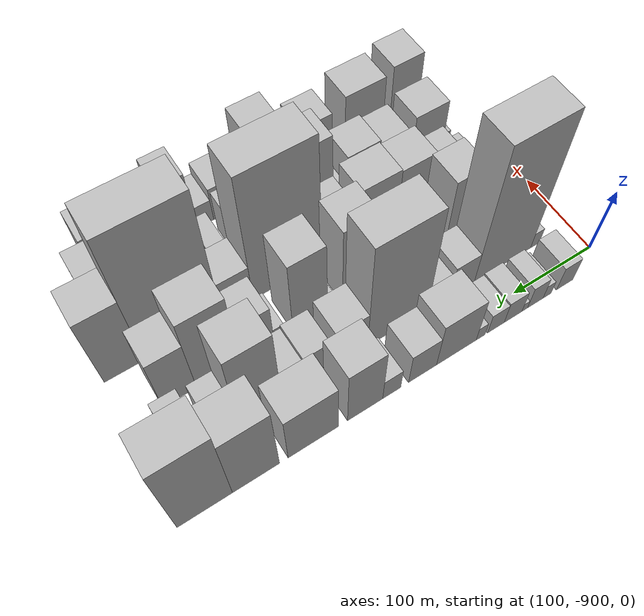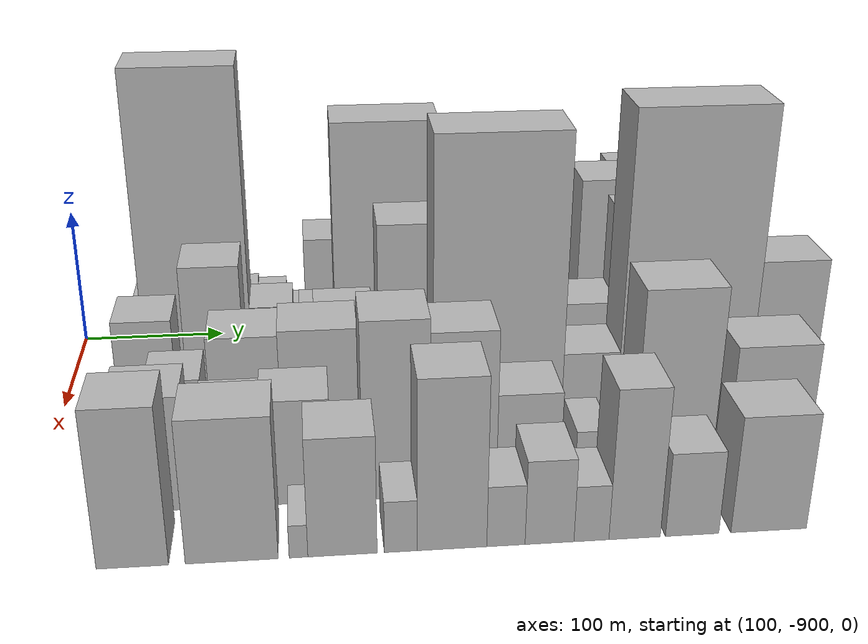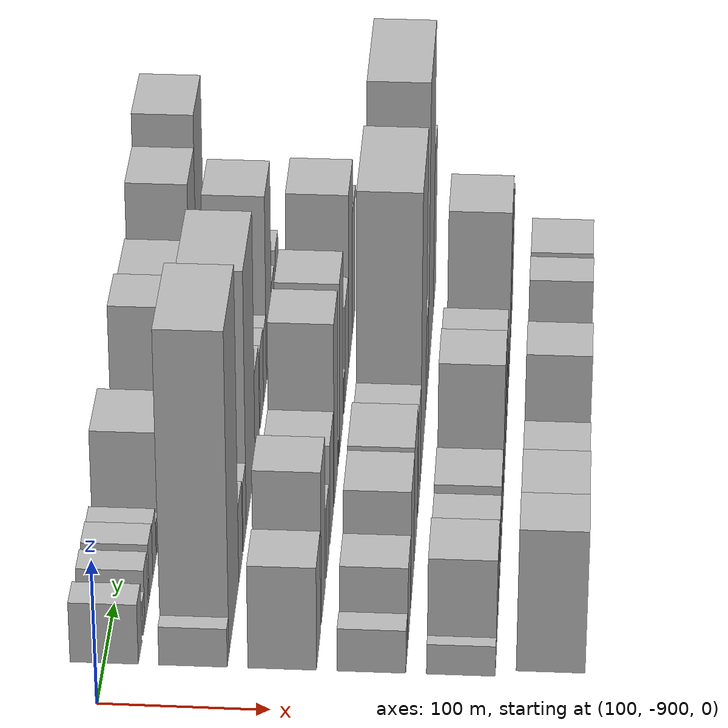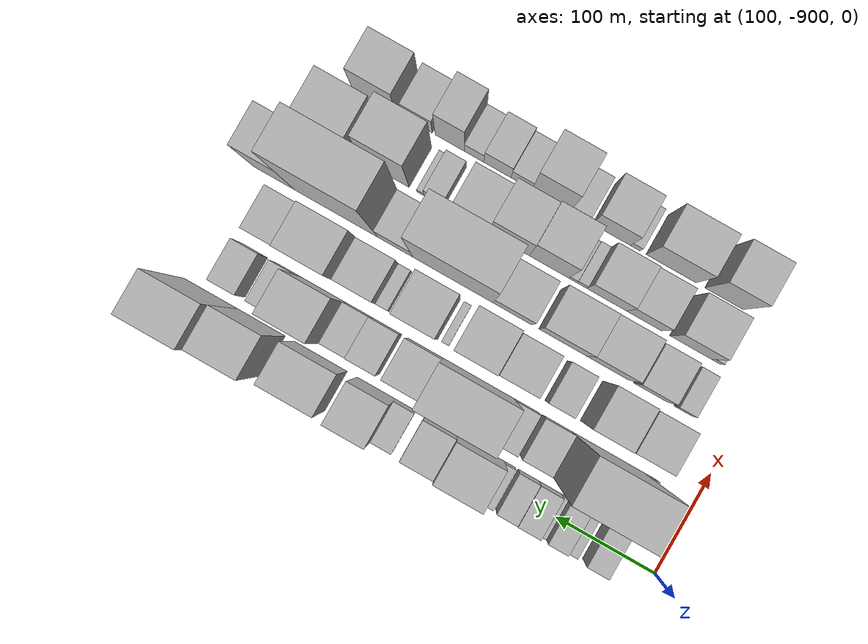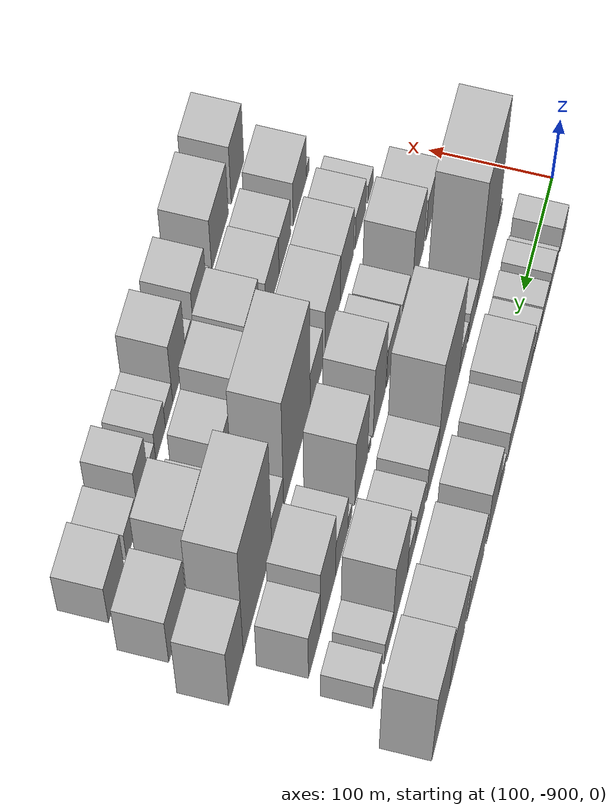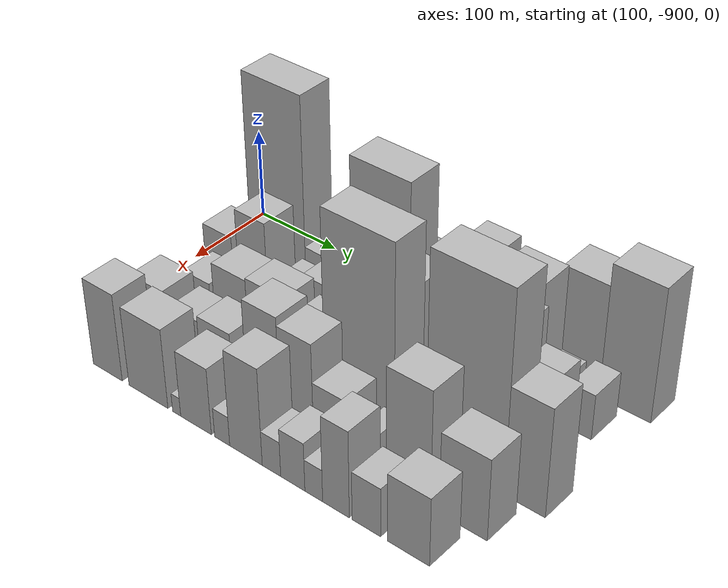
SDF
<sdf version="1.6">
 <world name="default">
  <model name="building_1">
   <static>1</static>
   <pose>100.0000 -849.2613 0 0.000000 0.000000 0.000000</pose>
   <link name="link">
    <pose>0 0 21.00 0 0 0</pose>
    <collision name="collision"><geometry><box><size>40.0000 21.4774 42.0000</size></box></geometry></collision>
    <visual name="visual">
     <cast_shadows>0</cast_shadows>
     <geometry><box><size>40.0000 21.4774 42.0000</size></box></geometry>
     <material>
      <script>
       <uri>model://HANNAS_wall/materials/scripts</uri>
       <uri>model://HANNAS_wall/materials/textures</uri>
       <name>vrc/HANNAS_wall</name>
      </script>
     </material>
    </visual>
   </link>
  </model>
  <model name="building_2">
   <static>1</static>
   <pose>100.0000 -826.2821 0 0.000000 0.000000 0.000000</pose>
   <link name="link">
    <pose>0 0 12.00 0 0 0</pose>
    <collision name="collision"><geometry><box><size>40.0000 10.4811 24.0000</size></box></geometry></collision>
    <visual name="visual">
     <cast_shadows>0</cast_shadows>
     <geometry><box><size>40.0000 10.4811 24.0000</size></box></geometry>
     <material>
      <script>
       <uri>model://HANNAS_wall/materials/scripts</uri>
       <uri>model://HANNAS_wall/materials/textures</uri>
       <name>vrc/HANNAS_wall</name>
      </script>
     </material>
    </visual>
   </link>
  </model>
  <model name="building_3">
   <static>1</static>
   <pose>100.0000 -811.0460 0 0.000000 0.000000 0.000000</pose>
   <link name="link">
    <pose>0 0 19.50 0 0 0</pose>
    <collision name="collision"><geometry><box><size>40.0000 19.9910 39.0000</size></box></geometry></collision>
    <visual name="visual">
     <cast_shadows>0</cast_shadows>
     <geometry><box><size>40.0000 19.9910 39.0000</size></box></geometry>
     <material>
      <script>
       <uri>model://HANNAS_wall/materials/scripts</uri>
       <uri>model://HANNAS_wall/materials/textures</uri>
       <name>vrc/HANNAS_wall</name>
      </script>
     </material>
    </visual>
   </link>
  </model>
  <model name="building_4">
   <static>1</static>
   <pose>100.0000 -797.5958 0 0.000000 0.000000 0.000000</pose>
   <link name="link">
    <pose>0 0 7.50 0 0 0</pose>
    <collision name="collision"><geometry><box><size>40.0000 6.9093 15.0000</size></box></geometry></collision>
    <visual name="visual">
     <cast_shadows>0</cast_shadows>
     <geometry><box><size>40.0000 6.9093 15.0000</size></box></geometry>
     <material>
      <script>
       <uri>model://HANNAS_wall/materials/scripts</uri>
       <uri>model://HANNAS_wall/materials/textures</uri>
       <name>vrc/HANNAS_wall</name>
      </script>
     </material>
    </visual>
   </link>
  </model>
  <model name="building_5">
   <static>1</static>
   <pose>100.0000 -782.9081 0 0.000000 0.000000 0.000000</pose>
   <link name="link">
    <pose>0 0 19.50 0 0 0</pose>
    <collision name="collision"><geometry><box><size>40.0000 22.4662 39.0000</size></box></geometry></collision>
    <visual name="visual">
     <cast_shadows>0</cast_shadows>
     <geometry><box><size>40.0000 22.4662 39.0000</size></box></geometry>
     <material>
      <script>
       <uri>model://HANNAS_wall/materials/scripts</uri>
       <uri>model://HANNAS_wall/materials/textures</uri>
       <name>vrc/HANNAS_wall</name>
      </script>
     </material>
    </visual>
   </link>
  </model>
  <model name="building_6">
   <static>1</static>
   <pose>100.0000 -761.3507 0 0.000000 0.000000 0.000000</pose>
   <link name="link">
    <pose>0 0 18.00 0 0 0</pose>
    <collision name="collision"><geometry><box><size>40.0000 20.6486 36.0000</size></box></geometry></collision>
    <visual name="visual">
     <cast_shadows>0</cast_shadows>
     <geometry><box><size>40.0000 20.6486 36.0000</size></box></geometry>
     <material>
      <script>
       <uri>model://HANNAS_wall/materials/scripts</uri>
       <uri>model://HANNAS_wall/materials/textures</uri>
       <name>vrc/HANNAS_wall</name>
      </script>
     </material>
    </visual>
   </link>
  </model>
  <model name="building_7">
   <static>1</static>
   <pose>100.0000 -742.5813 0 0.000000 0.000000 0.000000</pose>
   <link name="link">
    <pose>0 0 12.00 0 0 0</pose>
    <collision name="collision"><geometry><box><size>40.0000 10.8901 24.0000</size></box></geometry></collision>
    <visual name="visual">
     <cast_shadows>0</cast_shadows>
     <geometry><box><size>40.0000 10.8901 24.0000</size></box></geometry>
     <material>
      <script>
       <uri>model://HANNAS_wall/materials/scripts</uri>
       <uri>model://HANNAS_wall/materials/textures</uri>
       <name>vrc/HANNAS_wall</name>
      </script>
     </material>
    </visual>
   </link>
  </model>
  <model name="building_8">
   <static>1</static>
   <pose>100.0000 -713.3222 0 0.000000 0.000000 0.000000</pose>
   <link name="link">
    <pose>0 0 40.50 0 0 0</pose>
    <collision name="collision"><geometry><box><size>40.0000 47.6282 81.0000</size></box></geometry></collision>
    <visual name="visual">
     <cast_shadows>0</cast_shadows>
     <geometry><box><size>40.0000 47.6282 81.0000</size></box></geometry>
     <material>
      <script>
       <uri>model://HANNAS_wall/materials/scripts</uri>
       <uri>model://HANNAS_wall/materials/textures</uri>
       <name>vrc/HANNAS_wall</name>
      </script>
     </material>
    </visual>
   </link>
  </model>
  <model name="building_9">
   <static>1</static>
   <pose>100.0000 -673.1779 0 0.000000 0.000000 0.000000</pose>
   <link name="link">
    <pose>0 0 28.50 0 0 0</pose>
    <collision name="collision"><geometry><box><size>40.0000 32.6604 57.0000</size></box></geometry></collision>
    <visual name="visual">
     <cast_shadows>0</cast_shadows>
     <geometry><box><size>40.0000 32.6604 57.0000</size></box></geometry>
     <material>
      <script>
       <uri>model://HANNAS_wall/materials/scripts</uri>
       <uri>model://HANNAS_wall/materials/textures</uri>
       <name>vrc/HANNAS_wall</name>
      </script>
     </material>
    </visual>
   </link>
  </model>
  <model name="building_10">
   <static>1</static>
   <pose>100.0000 -637.5639 0 0.000000 0.000000 0.000000</pose>
   <link name="link">
    <pose>0 0 19.50 0 0 0</pose>
    <collision name="collision"><geometry><box><size>40.0000 20.5675 39.0000</size></box></geometry></collision>
    <visual name="visual">
     <cast_shadows>0</cast_shadows>
     <geometry><box><size>40.0000 20.5675 39.0000</size></box></geometry>
     <material>
      <script>
       <uri>model://HANNAS_wall/materials/scripts</uri>
       <uri>model://HANNAS_wall/materials/textures</uri>
       <name>vrc/HANNAS_wall</name>
      </script>
     </material>
    </visual>
   </link>
  </model>
  <model name="building_11">
   <static>1</static>
   <pose>100.0000 -607.6773 0 0.000000 0.000000 0.000000</pose>
   <link name="link">
    <pose>0 0 51.00 0 0 0</pose>
    <collision name="collision"><geometry><box><size>40.0000 39.2058 102.0000</size></box></geometry></collision>
    <visual name="visual">
     <cast_shadows>0</cast_shadows>
     <geometry><box><size>40.0000 39.2058 102.0000</size></box></geometry>
     <material>
      <script>
       <uri>model://HANNAS_wall/materials/scripts</uri>
       <uri>model://HANNAS_wall/materials/textures</uri>
       <name>vrc/HANNAS_wall</name>
      </script>
     </material>
    </visual>
   </link>
  </model>
  <model name="building_12">
   <static>1</static>
   <pose>100.0000 -551.1568 0 0.000000 0.000000 0.000000</pose>
   <link name="link">
    <pose>0 0 45.00 0 0 0</pose>
    <collision name="collision"><geometry><box><size>40.0000 53.8351 90.0000</size></box></geometry></collision>
    <visual name="visual">
     <cast_shadows>0</cast_shadows>
     <geometry><box><size>40.0000 53.8351 90.0000</size></box></geometry>
     <material>
      <script>
       <uri>model://HANNAS_wall/materials/scripts</uri>
       <uri>model://HANNAS_wall/materials/textures</uri>
       <name>vrc/HANNAS_wall</name>
      </script>
     </material>
    </visual>
   </link>
  </model>
  <model name="building_13">
   <static>1</static>
   <pose>100.0000 -491.0969 0 0.000000 0.000000 0.000000</pose>
   <link name="link">
    <pose>0 0 63.00 0 0 0</pose>
    <collision name="collision"><geometry><box><size>40.0000 48.2848 126.0000</size></box></geometry></collision>
    <visual name="visual">
     <cast_shadows>0</cast_shadows>
     <geometry><box><size>40.0000 48.2848 126.0000</size></box></geometry>
     <material>
      <script>
       <uri>model://HANNAS_wall/materials/scripts</uri>
       <uri>model://HANNAS_wall/materials/textures</uri>
       <name>vrc/HANNAS_wall</name>
      </script>
     </material>
    </visual>
   </link>
  </model>
  <model name="building_14">
   <static>1</static>
   <pose>100.0000 -439.5208 0 0.000000 0.000000 0.000000</pose>
   <link name="link">
    <pose>0 0 75.00 0 0 0</pose>
    <collision name="collision"><geometry><box><size>40.0000 54.8674 150.0000</size></box></geometry></collision>
    <visual name="visual">
     <cast_shadows>0</cast_shadows>
     <geometry><box><size>40.0000 54.8674 150.0000</size></box></geometry>
     <material>
      <script>
       <uri>model://HANNAS_wall/materials/scripts</uri>
       <uri>model://HANNAS_wall/materials/textures</uri>
       <name>vrc/HANNAS_wall</name>
      </script>
     </material>
    </visual>
   </link>
  </model>
  <model name="building_45">
   <static>1</static>
   <pose>152.0000 -854.0687 0 0.000000 0.000000 0.000000</pose>
   <link name="link">
    <pose>0 0 13.50 0 0 0</pose>
    <collision name="collision"><geometry><box><size>40.0000 11.8627 27.0000</size></box></geometry></collision>
    <visual name="visual">
     <cast_shadows>0</cast_shadows>
     <geometry><box><size>40.0000 11.8627 27.0000</size></box></geometry>
     <material>
      <script>
       <uri>model://HANNAS_wall/materials/scripts</uri>
       <uri>model://HANNAS_wall/materials/textures</uri>
       <name>vrc/HANNAS_wall</name>
      </script>
     </material>
    </visual>
   </link>
  </model>
  <model name="building_46">
   <static>1</static>
   <pose>152.0000 -811.6512 0 0.000000 0.000000 0.000000</pose>
   <link name="link">
    <pose>0 0 111.00 0 0 0</pose>
    <collision name="collision"><geometry><box><size>40.0000 72.9722 222.0000</size></box></geometry></collision>
    <visual name="visual">
     <cast_shadows>0</cast_shadows>
     <geometry><box><size>40.0000 72.9722 222.0000</size></box></geometry>
     <material>
      <script>
       <uri>model://HANNAS_wall/materials/scripts</uri>
       <uri>model://HANNAS_wall/materials/textures</uri>
       <name>vrc/HANNAS_wall</name>
      </script>
     </material>
    </visual>
   </link>
  </model>
  <model name="building_47">
   <static>1</static>
   <pose>152.0000 -760.4063 0 0.000000 0.000000 0.000000</pose>
   <link name="link">
    <pose>0 0 27.00 0 0 0</pose>
    <collision name="collision"><geometry><box><size>40.0000 29.5176 54.0000</size></box></geometry></collision>
    <visual name="visual">
     <cast_shadows>0</cast_shadows>
     <geometry><box><size>40.0000 29.5176 54.0000</size></box></geometry>
     <material>
      <script>
       <uri>model://HANNAS_wall/materials/scripts</uri>
       <uri>model://HANNAS_wall/materials/textures</uri>
       <name>vrc/HANNAS_wall</name>
      </script>
     </material>
    </visual>
   </link>
  </model>
  <model name="building_48">
   <static>1</static>
   <pose>152.0000 -729.2760 0 0.000000 0.000000 0.000000</pose>
   <link name="link">
    <pose>0 0 24.00 0 0 0</pose>
    <collision name="collision"><geometry><box><size>40.0000 24.7430 48.0000</size></box></geometry></collision>
    <visual name="visual">
     <cast_shadows>0</cast_shadows>
     <geometry><box><size>40.0000 24.7430 48.0000</size></box></geometry>
     <material>
      <script>
       <uri>model://HANNAS_wall/materials/scripts</uri>
       <uri>model://HANNAS_wall/materials/textures</uri>
       <name>vrc/HANNAS_wall</name>
      </script>
     </material>
    </visual>
   </link>
  </model>
  <model name="building_49">
   <static>1</static>
   <pose>152.0000 -681.2867 0 0.000000 0.000000 0.000000</pose>
   <link name="link">
    <pose>0 0 91.50 0 0 0</pose>
    <collision name="collision"><geometry><box><size>40.0000 71.2357 183.0000</size></box></geometry></collision>
    <visual name="visual">
     <cast_shadows>0</cast_shadows>
     <geometry><box><size>40.0000 71.2357 183.0000</size></box></geometry>
     <material>
      <script>
       <uri>model://HANNAS_wall/materials/scripts</uri>
       <uri>model://HANNAS_wall/materials/textures</uri>
       <name>vrc/HANNAS_wall</name>
      </script>
     </material>
    </visual>
   </link>
  </model>
  <model name="building_50">
   <static>1</static>
   <pose>152.0000 -627.7862 0 0.000000 0.000000 0.000000</pose>
   <link name="link">
    <pose>0 0 33.00 0 0 0</pose>
    <collision name="collision"><geometry><box><size>40.0000 35.7652 66.0000</size></box></geometry></collision>
    <visual name="visual">
     <cast_shadows>0</cast_shadows>
     <geometry><box><size>40.0000 35.7652 66.0000</size></box></geometry>
     <material>
      <script>
       <uri>model://HANNAS_wall/materials/scripts</uri>
       <uri>model://HANNAS_wall/materials/textures</uri>
       <name>vrc/HANNAS_wall</name>
      </script>
     </material>
    </visual>
   </link>
  </model>
  <model name="building_51">
   <static>1</static>
   <pose>152.0000 -589.1586 0 0.000000 0.000000 0.000000</pose>
   <link name="link">
    <pose>0 0 28.50 0 0 0</pose>
    <collision name="collision"><geometry><box><size>40.0000 29.4901 57.0000</size></box></geometry></collision>
    <visual name="visual">
     <cast_shadows>0</cast_shadows>
     <geometry><box><size>40.0000 29.4901 57.0000</size></box></geometry>
     <material>
      <script>
       <uri>model://HANNAS_wall/materials/scripts</uri>
       <uri>model://HANNAS_wall/materials/textures</uri>
       <name>vrc/HANNAS_wall</name>
      </script>
     </material>
    </visual>
   </link>
  </model>
  <model name="building_52">
   <static>1</static>
   <pose>152.0000 -561.6178 0 0.000000 0.000000 0.000000</pose>
   <link name="link">
    <pose>0 0 25.50 0 0 0</pose>
    <collision name="collision"><geometry><box><size>40.0000 25.5915 51.0000</size></box></geometry></collision>
    <visual name="visual">
     <cast_shadows>0</cast_shadows>
     <geometry><box><size>40.0000 25.5915 51.0000</size></box></geometry>
     <material>
      <script>
       <uri>model://HANNAS_wall/materials/scripts</uri>
       <uri>model://HANNAS_wall/materials/textures</uri>
       <name>vrc/HANNAS_wall</name>
      </script>
     </material>
    </visual>
   </link>
  </model>
  <model name="building_53">
   <static>1</static>
   <pose>152.0000 -525.6842 0 0.000000 0.000000 0.000000</pose>
   <link name="link">
    <pose>0 0 69.00 0 0 0</pose>
    <collision name="collision"><geometry><box><size>40.0000 46.2758 138.0000</size></box></geometry></collision>
    <visual name="visual">
     <cast_shadows>0</cast_shadows>
     <geometry><box><size>40.0000 46.2758 138.0000</size></box></geometry>
     <material>
      <script>
       <uri>model://HANNAS_wall/materials/scripts</uri>
       <uri>model://HANNAS_wall/materials/textures</uri>
       <name>vrc/HANNAS_wall</name>
      </script>
     </material>
    </visual>
   </link>
  </model>
  <model name="building_54">
   <static>1</static>
   <pose>152.0000 -489.3933 0 0.000000 0.000000 0.000000</pose>
   <link name="link">
    <pose>0 0 22.50 0 0 0</pose>
    <collision name="collision"><geometry><box><size>40.0000 26.3059 45.0000</size></box></geometry></collision>
    <visual name="visual">
     <cast_shadows>0</cast_shadows>
     <geometry><box><size>40.0000 26.3059 45.0000</size></box></geometry>
     <material>
      <script>
       <uri>model://HANNAS_wall/materials/scripts</uri>
       <uri>model://HANNAS_wall/materials/textures</uri>
       <name>vrc/HANNAS_wall</name>
      </script>
     </material>
    </visual>
   </link>
  </model>
  <model name="building_55">
   <static>1</static>
   <pose>152.0000 -453.8426 0 0.000000 0.000000 0.000000</pose>
   <link name="link">
    <pose>0 0 25.50 0 0 0</pose>
    <collision name="collision"><geometry><box><size>40.0000 26.7954 51.0000</size></box></geometry></collision>
    <visual name="visual">
     <cast_shadows>0</cast_shadows>
     <geometry><box><size>40.0000 26.7954 51.0000</size></box></geometry>
     <material>
      <script>
       <uri>model://HANNAS_wall/materials/scripts</uri>
       <uri>model://HANNAS_wall/materials/textures</uri>
       <name>vrc/HANNAS_wall</name>
      </script>
     </material>
    </visual>
   </link>
  </model>
  <model name="building_92">
   <static>1</static>
   <pose>204.0000 -841.1010 0 0.000000 0.000000 0.000000</pose>
   <link name="link">
    <pose>0 0 36.00 0 0 0</pose>
    <collision name="collision"><geometry><box><size>40.0000 37.7981 72.0000</size></box></geometry></collision>
    <visual name="visual">
     <cast_shadows>0</cast_shadows>
     <geometry><box><size>40.0000 37.7981 72.0000</size></box></geometry>
     <material>
      <script>
       <uri>model://HANNAS_wall/materials/scripts</uri>
       <uri>model://HANNAS_wall/materials/textures</uri>
       <name>vrc/HANNAS_wall</name>
      </script>
     </material>
    </visual>
   </link>
  </model>
  <model name="building_93">
   <static>1</static>
   <pose>204.0000 -796.2831 0 0.000000 0.000000 0.000000</pose>
   <link name="link">
    <pose>0 0 54.00 0 0 0</pose>
    <collision name="collision"><geometry><box><size>40.0000 37.8376 108.0000</size></box></geometry></collision>
    <visual name="visual">
     <cast_shadows>0</cast_shadows>
     <geometry><box><size>40.0000 37.8376 108.0000</size></box></geometry>
     <material>
      <script>
       <uri>model://HANNAS_wall/materials/scripts</uri>
       <uri>model://HANNAS_wall/materials/textures</uri>
       <name>vrc/HANNAS_wall</name>
      </script>
     </material>
    </visual>
   </link>
  </model>
  <model name="building_94">
   <static>1</static>
   <pose>204.0000 -754.4841 0 0.000000 0.000000 0.000000</pose>
   <link name="link">
    <pose>0 0 25.50 0 0 0</pose>
    <collision name="collision"><geometry><box><size>40.0000 25.7603 51.0000</size></box></geometry></collision>
    <visual name="visual">
     <cast_shadows>0</cast_shadows>
     <geometry><box><size>40.0000 25.7603 51.0000</size></box></geometry>
     <material>
      <script>
       <uri>model://HANNAS_wall/materials/scripts</uri>
       <uri>model://HANNAS_wall/materials/textures</uri>
       <name>vrc/HANNAS_wall</name>
      </script>
     </material>
    </visual>
   </link>
  </model>
  <model name="building_95">
   <static>1</static>
   <pose>204.0000 -712.4133 0 0.000000 0.000000 0.000000</pose>
   <link name="link">
    <pose>0 0 36.00 0 0 0</pose>
    <collision name="collision"><geometry><box><size>40.0000 38.3814 72.0000</size></box></geometry></collision>
    <visual name="visual">
     <cast_shadows>0</cast_shadows>
     <geometry><box><size>40.0000 38.3814 72.0000</size></box></geometry>
     <material>
      <script>
       <uri>model://HANNAS_wall/materials/scripts</uri>
       <uri>model://HANNAS_wall/materials/textures</uri>
       <name>vrc/HANNAS_wall</name>
      </script>
     </material>
    </visual>
   </link>
  </model>
  <model name="building_96">
   <static>1</static>
   <pose>204.0000 -670.3769 0 0.000000 0.000000 0.000000</pose>
   <link name="link">
    <pose>0 0 66.00 0 0 0</pose>
    <collision name="collision"><geometry><box><size>40.0000 39.6915 132.0000</size></box></geometry></collision>
    <visual name="visual">
     <cast_shadows>0</cast_shadows>
     <geometry><box><size>40.0000 39.6915 132.0000</size></box></geometry>
     <material>
      <script>
       <uri>model://HANNAS_wall/materials/scripts</uri>
       <uri>model://HANNAS_wall/materials/textures</uri>
       <name>vrc/HANNAS_wall</name>
      </script>
     </material>
    </visual>
   </link>
  </model>
  <model name="building_97">
   <static>1</static>
   <pose>204.0000 -640.8719 0 0.000000 0.000000 0.000000</pose>
   <link name="link">
    <pose>0 0 9.00 0 0 0</pose>
    <collision name="collision"><geometry><box><size>40.0000 7.3185 18.0000</size></box></geometry></collision>
    <visual name="visual">
     <cast_shadows>0</cast_shadows>
     <geometry><box><size>40.0000 7.3185 18.0000</size></box></geometry>
     <material>
      <script>
       <uri>model://HANNAS_wall/materials/scripts</uri>
       <uri>model://HANNAS_wall/materials/textures</uri>
       <name>vrc/HANNAS_wall</name>
      </script>
     </material>
    </visual>
   </link>
  </model>
  <model name="building_98">
   <static>1</static>
   <pose>204.0000 -613.1644 0 0.000000 0.000000 0.000000</pose>
   <link name="link">
    <pose>0 0 63.00 0 0 0</pose>
    <collision name="collision"><geometry><box><size>40.0000 40.0965 126.0000</size></box></geometry></collision>
    <visual name="visual">
     <cast_shadows>0</cast_shadows>
     <geometry><box><size>40.0000 40.0965 126.0000</size></box></geometry>
     <material>
      <script>
       <uri>model://HANNAS_wall/materials/scripts</uri>
       <uri>model://HANNAS_wall/materials/textures</uri>
       <name>vrc/HANNAS_wall</name>
      </script>
     </material>
    </visual>
   </link>
  </model>
  <model name="building_99">
   <static>1</static>
   <pose>204.0000 -578.0000 0 0.000000 0.000000 0.000000</pose>
   <link name="link">
    <pose>0 0 13.50 0 0 0</pose>
    <collision name="collision"><geometry><box><size>40.0000 12.2322 27.0000</size></box></geometry></collision>
    <visual name="visual">
     <cast_shadows>0</cast_shadows>
     <geometry><box><size>40.0000 12.2322 27.0000</size></box></geometry>
     <material>
      <script>
       <uri>model://HANNAS_wall/materials/scripts</uri>
       <uri>model://HANNAS_wall/materials/textures</uri>
       <name>vrc/HANNAS_wall</name>
      </script>
     </material>
    </visual>
   </link>
  </model>
  <model name="building_100">
   <static>1</static>
   <pose>204.0000 -552.8324 0 0.000000 0.000000 0.000000</pose>
   <link name="link">
    <pose>0 0 36.00 0 0 0</pose>
    <collision name="collision"><geometry><box><size>40.0000 38.1032 72.0000</size></box></geometry></collision>
    <visual name="visual">
     <cast_shadows>0</cast_shadows>
     <geometry><box><size>40.0000 38.1032 72.0000</size></box></geometry>
     <material>
      <script>
       <uri>model://HANNAS_wall/materials/scripts</uri>
       <uri>model://HANNAS_wall/materials/textures</uri>
       <name>vrc/HANNAS_wall</name>
      </script>
     </material>
    </visual>
   </link>
  </model>
  <model name="building_101">
   <static>1</static>
   <pose>204.0000 -510.4311 0 0.000000 0.000000 0.000000</pose>
   <link name="link">
    <pose>0 0 66.00 0 0 0</pose>
    <collision name="collision"><geometry><box><size>40.0000 46.6993 132.0000</size></box></geometry></collision>
    <visual name="visual">
     <cast_shadows>0</cast_shadows>
     <geometry><box><size>40.0000 46.6993 132.0000</size></box></geometry>
     <material>
      <script>
       <uri>model://HANNAS_wall/materials/scripts</uri>
       <uri>model://HANNAS_wall/materials/textures</uri>
       <name>vrc/HANNAS_wall</name>
      </script>
     </material>
    </visual>
   </link>
  </model>
  <model name="building_102">
   <static>1</static>
   <pose>204.0000 -469.2606 0 0.000000 0.000000 0.000000</pose>
   <link name="link">
    <pose>0 0 46.50 0 0 0</pose>
    <collision name="collision"><geometry><box><size>40.0000 35.6415 93.0000</size></box></geometry></collision>
    <visual name="visual">
     <cast_shadows>0</cast_shadows>
     <geometry><box><size>40.0000 35.6415 93.0000</size></box></geometry>
     <material>
      <script>
       <uri>model://HANNAS_wall/materials/scripts</uri>
       <uri>model://HANNAS_wall/materials/textures</uri>
       <name>vrc/HANNAS_wall</name>
      </script>
     </material>
    </visual>
   </link>
  </model>
  <model name="building_140">
   <static>1</static>
   <pose>256.0000 -851.3380 0 0.000000 0.000000 0.000000</pose>
   <link name="link">
    <pose>0 0 15.00 0 0 0</pose>
    <collision name="collision"><geometry><box><size>40.0000 17.3240 30.0000</size></box></geometry></collision>
    <visual name="visual">
     <cast_shadows>0</cast_shadows>
     <geometry><box><size>40.0000 17.3240 30.0000</size></box></geometry>
     <material>
      <script>
       <uri>model://HANNAS_wall/materials/scripts</uri>
       <uri>model://HANNAS_wall/materials/textures</uri>
       <name>vrc/HANNAS_wall</name>
      </script>
     </material>
    </visual>
   </link>
  </model>
  <model name="building_141">
   <static>1</static>
   <pose>256.0000 -818.6465 0 0.000000 0.000000 0.000000</pose>
   <link name="link">
    <pose>0 0 28.50 0 0 0</pose>
    <collision name="collision"><geometry><box><size>40.0000 34.0592 57.0000</size></box></geometry></collision>
    <visual name="visual">
     <cast_shadows>0</cast_shadows>
     <geometry><box><size>40.0000 34.0592 57.0000</size></box></geometry>
     <material>
      <script>
       <uri>model://HANNAS_wall/materials/scripts</uri>
       <uri>model://HANNAS_wall/materials/textures</uri>
       <name>vrc/HANNAS_wall</name>
      </script>
     </material>
    </visual>
   </link>
  </model>
  <model name="building_142">
   <static>1</static>
   <pose>256.0000 -775.2373 0 0.000000 0.000000 0.000000</pose>
   <link name="link">
    <pose>0 0 42.00 0 0 0</pose>
    <collision name="collision"><geometry><box><size>40.0000 42.7591 84.0000</size></box></geometry></collision>
    <visual name="visual">
     <cast_shadows>0</cast_shadows>
     <geometry><box><size>40.0000 42.7591 84.0000</size></box></geometry>
     <material>
      <script>
       <uri>model://HANNAS_wall/materials/scripts</uri>
       <uri>model://HANNAS_wall/materials/textures</uri>
       <name>vrc/HANNAS_wall</name>
      </script>
     </material>
    </visual>
   </link>
  </model>
  <model name="building_143">
   <static>1</static>
   <pose>256.0000 -729.8476 0 0.000000 0.000000 0.000000</pose>
   <link name="link">
    <pose>0 0 43.50 0 0 0</pose>
    <collision name="collision"><geometry><box><size>40.0000 48.0203 87.0000</size></box></geometry></collision>
    <visual name="visual">
     <cast_shadows>0</cast_shadows>
     <geometry><box><size>40.0000 48.0203 87.0000</size></box></geometry>
     <material>
      <script>
       <uri>model://HANNAS_wall/materials/scripts</uri>
       <uri>model://HANNAS_wall/materials/textures</uri>
       <name>vrc/HANNAS_wall</name>
      </script>
     </material>
    </visual>
   </link>
  </model>
  <model name="building_144">
   <static>1</static>
   <pose>256.0000 -679.3189 0 0.000000 0.000000 0.000000</pose>
   <link name="link">
    <pose>0 0 36.00 0 0 0</pose>
    <collision name="collision"><geometry><box><size>40.0000 39.0371 72.0000</size></box></geometry></collision>
    <visual name="visual">
     <cast_shadows>0</cast_shadows>
     <geometry><box><size>40.0000 39.0371 72.0000</size></box></geometry>
     <material>
      <script>
       <uri>model://HANNAS_wall/materials/scripts</uri>
       <uri>model://HANNAS_wall/materials/textures</uri>
       <name>vrc/HANNAS_wall</name>
      </script>
     </material>
    </visual>
   </link>
  </model>
  <model name="building_145">
   <static>1</static>
   <pose>256.0000 -619.1862 0 0.000000 0.000000 0.000000</pose>
   <link name="link">
    <pose>0 0 103.50 0 0 0</pose>
    <collision name="collision"><geometry><box><size>40.0000 81.2282 207.0000</size></box></geometry></collision>
    <visual name="visual">
     <cast_shadows>0</cast_shadows>
     <geometry><box><size>40.0000 81.2282 207.0000</size></box></geometry>
     <material>
      <script>
       <uri>model://HANNAS_wall/materials/scripts</uri>
       <uri>model://HANNAS_wall/materials/textures</uri>
       <name>vrc/HANNAS_wall</name>
      </script>
     </material>
    </visual>
   </link>
  </model>
  <model name="building_146">
   <static>1</static>
   <pose>256.0000 -560.8783 0 0.000000 0.000000 0.000000</pose>
   <link name="link">
    <pose>0 0 31.50 0 0 0</pose>
    <collision name="collision"><geometry><box><size>40.0000 35.3877 63.0000</size></box></geometry></collision>
    <visual name="visual">
     <cast_shadows>0</cast_shadows>
     <geometry><box><size>40.0000 35.3877 63.0000</size></box></geometry>
     <material>
      <script>
       <uri>model://HANNAS_wall/materials/scripts</uri>
       <uri>model://HANNAS_wall/materials/textures</uri>
       <name>vrc/HANNAS_wall</name>
      </script>
     </material>
    </visual>
   </link>
  </model>
  <model name="building_147">
   <static>1</static>
   <pose>256.0000 -500.8852 0 0.000000 0.000000 0.000000</pose>
   <link name="link">
    <pose>0 0 109.50 0 0 0</pose>
    <collision name="collision"><geometry><box><size>40.0000 84.5984 219.0000</size></box></geometry></collision>
    <visual name="visual">
     <cast_shadows>0</cast_shadows>
     <geometry><box><size>40.0000 84.5984 219.0000</size></box></geometry>
     <material>
      <script>
       <uri>model://HANNAS_wall/materials/scripts</uri>
       <uri>model://HANNAS_wall/materials/textures</uri>
       <name>vrc/HANNAS_wall</name>
      </script>
     </material>
    </visual>
   </link>
  </model>
  <model name="building_148">
   <static>1</static>
   <pose>256.0000 -437.5039 0 0.000000 0.000000 0.000000</pose>
   <link name="link">
    <pose>0 0 60.00 0 0 0</pose>
    <collision name="collision"><geometry><box><size>40.0000 42.1641 120.0000</size></box></geometry></collision>
    <visual name="visual">
     <cast_shadows>0</cast_shadows>
     <geometry><box><size>40.0000 42.1641 120.0000</size></box></geometry>
     <material>
      <script>
       <uri>model://HANNAS_wall/materials/scripts</uri>
       <uri>model://HANNAS_wall/materials/textures</uri>
       <name>vrc/HANNAS_wall</name>
      </script>
     </material>
    </visual>
   </link>
  </model>
  <model name="building_187">
   <static>1</static>
   <pose>308.0000 -855.5163 0 0.000000 0.000000 0.000000</pose>
   <link name="link">
    <pose>0 0 10.50 0 0 0</pose>
    <collision name="collision"><geometry><box><size>40.0000 8.9674 21.0000</size></box></geometry></collision>
    <visual name="visual">
     <cast_shadows>0</cast_shadows>
     <geometry><box><size>40.0000 8.9674 21.0000</size></box></geometry>
     <material>
      <script>
       <uri>model://HANNAS_wall/materials/scripts</uri>
       <uri>model://HANNAS_wall/materials/textures</uri>
       <name>vrc/HANNAS_wall</name>
      </script>
     </material>
    </visual>
   </link>
  </model>
  <model name="building_188">
   <static>1</static>
   <pose>308.0000 -829.9972 0 0.000000 0.000000 0.000000</pose>
   <link name="link">
    <pose>0 0 37.50 0 0 0</pose>
    <collision name="collision"><geometry><box><size>40.0000 42.0708 75.0000</size></box></geometry></collision>
    <visual name="visual">
     <cast_shadows>0</cast_shadows>
     <geometry><box><size>40.0000 42.0708 75.0000</size></box></geometry>
     <material>
      <script>
       <uri>model://HANNAS_wall/materials/scripts</uri>
       <uri>model://HANNAS_wall/materials/textures</uri>
       <name>vrc/HANNAS_wall</name>
      </script>
     </material>
    </visual>
   </link>
  </model>
  <model name="building_189">
   <static>1</static>
   <pose>308.0000 -783.0438 0 0.000000 0.000000 0.000000</pose>
   <link name="link">
    <pose>0 0 31.50 0 0 0</pose>
    <collision name="collision"><geometry><box><size>40.0000 35.8360 63.0000</size></box></geometry></collision>
    <visual name="visual">
     <cast_shadows>0</cast_shadows>
     <geometry><box><size>40.0000 35.8360 63.0000</size></box></geometry>
     <material>
      <script>
       <uri>model://HANNAS_wall/materials/scripts</uri>
       <uri>model://HANNAS_wall/materials/textures</uri>
       <name>vrc/HANNAS_wall</name>
      </script>
     </material>
    </visual>
   </link>
  </model>
  <model name="building_190">
   <static>1</static>
   <pose>308.0000 -744.9653 0 0.000000 0.000000 0.000000</pose>
   <link name="link">
    <pose>0 0 34.50 0 0 0</pose>
    <collision name="collision"><geometry><box><size>40.0000 40.3210 69.0000</size></box></geometry></collision>
    <visual name="visual">
     <cast_shadows>0</cast_shadows>
     <geometry><box><size>40.0000 40.3210 69.0000</size></box></geometry>
     <material>
      <script>
       <uri>model://HANNAS_wall/materials/scripts</uri>
       <uri>model://HANNAS_wall/materials/textures</uri>
       <name>vrc/HANNAS_wall</name>
      </script>
     </material>
    </visual>
   </link>
  </model>
  <model name="building_191">
   <static>1</static>
   <pose>308.0000 -719.8253 0 0.000000 0.000000 0.000000</pose>
   <link name="link">
    <pose>0 0 10.50 0 0 0</pose>
    <collision name="collision"><geometry><box><size>40.0000 9.9590 21.0000</size></box></geometry></collision>
    <visual name="visual">
     <cast_shadows>0</cast_shadows>
     <geometry><box><size>40.0000 9.9590 21.0000</size></box></geometry>
     <material>
      <script>
       <uri>model://HANNAS_wall/materials/scripts</uri>
       <uri>model://HANNAS_wall/materials/textures</uri>
       <name>vrc/HANNAS_wall</name>
      </script>
     </material>
    </visual>
   </link>
  </model>
  <model name="building_192">
   <static>1</static>
   <pose>308.0000 -710.7699 0 0.000000 0.000000 0.000000</pose>
   <link name="link">
    <pose>0 0 9.00 0 0 0</pose>
    <collision name="collision"><geometry><box><size>40.0000 8.1519 18.0000</size></box></geometry></collision>
    <visual name="visual">
     <cast_shadows>0</cast_shadows>
     <geometry><box><size>40.0000 8.1519 18.0000</size></box></geometry>
     <material>
      <script>
       <uri>model://HANNAS_wall/materials/scripts</uri>
       <uri>model://HANNAS_wall/materials/textures</uri>
       <name>vrc/HANNAS_wall</name>
      </script>
     </material>
    </visual>
   </link>
  </model>
  <model name="building_193">
   <static>1</static>
   <pose>308.0000 -686.6538 0 0.000000 0.000000 0.000000</pose>
   <link name="link">
    <pose>0 0 58.50 0 0 0</pose>
    <collision name="collision"><geometry><box><size>40.0000 40.0803 117.0000</size></box></geometry></collision>
    <visual name="visual">
     <cast_shadows>0</cast_shadows>
     <geometry><box><size>40.0000 40.0803 117.0000</size></box></geometry>
     <material>
      <script>
       <uri>model://HANNAS_wall/materials/scripts</uri>
       <uri>model://HANNAS_wall/materials/textures</uri>
       <name>vrc/HANNAS_wall</name>
      </script>
     </material>
    </visual>
   </link>
  </model>
  <model name="building_194">
   <static>1</static>
   <pose>308.0000 -646.9198 0 0.000000 0.000000 0.000000</pose>
   <link name="link">
    <pose>0 0 54.00 0 0 0</pose>
    <collision name="collision"><geometry><box><size>40.0000 39.3878 108.0000</size></box></geometry></collision>
    <visual name="visual">
     <cast_shadows>0</cast_shadows>
     <geometry><box><size>40.0000 39.3878 108.0000</size></box></geometry>
     <material>
      <script>
       <uri>model://HANNAS_wall/materials/scripts</uri>
       <uri>model://HANNAS_wall/materials/textures</uri>
       <name>vrc/HANNAS_wall</name>
      </script>
     </material>
    </visual>
   </link>
  </model>
  <model name="building_195">
   <static>1</static>
   <pose>308.0000 -608.1165 0 0.000000 0.000000 0.000000</pose>
   <link name="link">
    <pose>0 0 33.00 0 0 0</pose>
    <collision name="collision"><geometry><box><size>40.0000 38.2187 66.0000</size></box></geometry></collision>
    <visual name="visual">
     <cast_shadows>0</cast_shadows>
     <geometry><box><size>40.0000 38.2187 66.0000</size></box></geometry>
     <material>
      <script>
       <uri>model://HANNAS_wall/materials/scripts</uri>
       <uri>model://HANNAS_wall/materials/textures</uri>
       <name>vrc/HANNAS_wall</name>
      </script>
     </material>
    </visual>
   </link>
  </model>
  <model name="building_196">
   <static>1</static>
   <pose>308.0000 -570.0433 0 0.000000 0.000000 0.000000</pose>
   <link name="link">
    <pose>0 0 19.50 0 0 0</pose>
    <collision name="collision"><geometry><box><size>40.0000 19.9279 39.0000</size></box></geometry></collision>
    <visual name="visual">
     <cast_shadows>0</cast_shadows>
     <geometry><box><size>40.0000 19.9279 39.0000</size></box></geometry>
     <material>
      <script>
       <uri>model://HANNAS_wall/materials/scripts</uri>
       <uri>model://HANNAS_wall/materials/textures</uri>
       <name>vrc/HANNAS_wall</name>
      </script>
     </material>
    </visual>
   </link>
  </model>
  <model name="building_197">
   <static>1</static>
   <pose>308.0000 -556.4429 0 0.000000 0.000000 0.000000</pose>
   <link name="link">
    <pose>0 0 7.50 0 0 0</pose>
    <collision name="collision"><geometry><box><size>40.0000 7.2728 15.0000</size></box></geometry></collision>
    <visual name="visual">
     <cast_shadows>0</cast_shadows>
     <geometry><box><size>40.0000 7.2728 15.0000</size></box></geometry>
     <material>
      <script>
       <uri>model://HANNAS_wall/materials/scripts</uri>
       <uri>model://HANNAS_wall/materials/textures</uri>
       <name>vrc/HANNAS_wall</name>
      </script>
     </material>
    </visual>
   </link>
  </model>
  <model name="building_198">
   <static>1</static>
   <pose>308.0000 -520.8126 0 0.000000 0.000000 0.000000</pose>
   <link name="link">
    <pose>0 0 64.50 0 0 0</pose>
    <collision name="collision"><geometry><box><size>40.0000 47.9879 129.0000</size></box></geometry></collision>
    <visual name="visual">
     <cast_shadows>0</cast_shadows>
     <geometry><box><size>40.0000 47.9879 129.0000</size></box></geometry>
     <material>
      <script>
       <uri>model://HANNAS_wall/materials/scripts</uri>
       <uri>model://HANNAS_wall/materials/textures</uri>
       <name>vrc/HANNAS_wall</name>
      </script>
     </material>
    </visual>
   </link>
  </model>
  <model name="building_199">
   <static>1</static>
   <pose>308.0000 -490.7720 0 0.000000 0.000000 0.000000</pose>
   <link name="link">
    <pose>0 0 7.50 0 0 0</pose>
    <collision name="collision"><geometry><box><size>40.0000 6.0932 15.0000</size></box></geometry></collision>
    <visual name="visual">
     <cast_shadows>0</cast_shadows>
     <geometry><box><size>40.0000 6.0932 15.0000</size></box></geometry>
     <material>
      <script>
       <uri>model://HANNAS_wall/materials/scripts</uri>
       <uri>model://HANNAS_wall/materials/textures</uri>
       <name>vrc/HANNAS_wall</name>
      </script>
     </material>
    </visual>
   </link>
  </model>
  <model name="building_200">
   <static>1</static>
   <pose>308.0000 -462.6954 0 0.000000 0.000000 0.000000</pose>
   <link name="link">
    <pose>0 0 45.00 0 0 0</pose>
    <collision name="collision"><geometry><box><size>40.0000 50.0601 90.0000</size></box></geometry></collision>
    <visual name="visual">
     <cast_shadows>0</cast_shadows>
     <geometry><box><size>40.0000 50.0601 90.0000</size></box></geometry>
     <material>
      <script>
       <uri>model://HANNAS_wall/materials/scripts</uri>
       <uri>model://HANNAS_wall/materials/textures</uri>
       <name>vrc/HANNAS_wall</name>
      </script>
     </material>
    </visual>
   </link>
  </model>
  <model name="building_236">
   <static>1</static>
   <pose>360.0000 -834.6126 0 0.000000 0.000000 0.000000</pose>
   <link name="link">
    <pose>0 0 49.50 0 0 0</pose>
    <collision name="collision"><geometry><box><size>40.0000 38.7748 99.0000</size></box></geometry></collision>
    <visual name="visual">
     <cast_shadows>0</cast_shadows>
     <geometry><box><size>40.0000 38.7748 99.0000</size></box></geometry>
     <material>
      <script>
       <uri>model://HANNAS_wall/materials/scripts</uri>
       <uri>model://HANNAS_wall/materials/textures</uri>
       <name>vrc/HANNAS_wall</name>
      </script>
     </material>
    </visual>
   </link>
  </model>
  <model name="building_237">
   <static>1</static>
   <pose>360.0000 -780.9958 0 0.000000 0.000000 0.000000</pose>
   <link name="link">
    <pose>0 0 45.00 0 0 0</pose>
    <collision name="collision"><geometry><box><size>40.0000 50.4588 90.0000</size></box></geometry></collision>
    <visual name="visual">
     <cast_shadows>0</cast_shadows>
     <geometry><box><size>40.0000 50.4588 90.0000</size></box></geometry>
     <material>
      <script>
       <uri>model://HANNAS_wall/materials/scripts</uri>
       <uri>model://HANNAS_wall/materials/textures</uri>
       <name>vrc/HANNAS_wall</name>
      </script>
     </material>
    </visual>
   </link>
  </model>
  <model name="building_238">
   <static>1</static>
   <pose>360.0000 -744.6528 0 0.000000 0.000000 0.000000</pose>
   <link name="link">
    <pose>0 0 10.50 0 0 0</pose>
    <collision name="collision"><geometry><box><size>40.0000 10.2271 21.0000</size></box></geometry></collision>
    <visual name="visual">
     <cast_shadows>0</cast_shadows>
     <geometry><box><size>40.0000 10.2271 21.0000</size></box></geometry>
     <material>
      <script>
       <uri>model://HANNAS_wall/materials/scripts</uri>
       <uri>model://HANNAS_wall/materials/textures</uri>
       <name>vrc/HANNAS_wall</name>
      </script>
     </material>
    </visual>
   </link>
  </model>
  <model name="building_239">
   <static>1</static>
   <pose>360.0000 -720.4489 0 0.000000 0.000000 0.000000</pose>
   <link name="link">
    <pose>0 0 37.50 0 0 0</pose>
    <collision name="collision"><geometry><box><size>40.0000 38.1807 75.0000</size></box></geometry></collision>
    <visual name="visual">
     <cast_shadows>0</cast_shadows>
     <geometry><box><size>40.0000 38.1807 75.0000</size></box></geometry>
     <material>
      <script>
       <uri>model://HANNAS_wall/materials/scripts</uri>
       <uri>model://HANNAS_wall/materials/textures</uri>
       <name>vrc/HANNAS_wall</name>
      </script>
     </material>
    </visual>
   </link>
  </model>
  <model name="building_240">
   <static>1</static>
   <pose>360.0000 -688.1915 0 0.000000 0.000000 0.000000</pose>
   <link name="link">
    <pose>0 0 16.50 0 0 0</pose>
    <collision name="collision"><geometry><box><size>40.0000 18.3341 33.0000</size></box></geometry></collision>
    <visual name="visual">
     <cast_shadows>0</cast_shadows>
     <geometry><box><size>40.0000 18.3341 33.0000</size></box></geometry>
     <material>
      <script>
       <uri>model://HANNAS_wall/materials/scripts</uri>
       <uri>model://HANNAS_wall/materials/textures</uri>
       <name>vrc/HANNAS_wall</name>
      </script>
     </material>
    </visual>
   </link>
  </model>
  <model name="building_241">
   <static>1</static>
   <pose>360.0000 -659.6420 0 0.000000 0.000000 0.000000</pose>
   <link name="link">
    <pose>0 0 54.00 0 0 0</pose>
    <collision name="collision"><geometry><box><size>40.0000 38.7648 108.0000</size></box></geometry></collision>
    <visual name="visual">
     <cast_shadows>0</cast_shadows>
     <geometry><box><size>40.0000 38.7648 108.0000</size></box></geometry>
     <material>
      <script>
       <uri>model://HANNAS_wall/materials/scripts</uri>
       <uri>model://HANNAS_wall/materials/textures</uri>
       <name>vrc/HANNAS_wall</name>
      </script>
     </material>
    </visual>
   </link>
  </model>
  <model name="building_242">
   <static>1</static>
   <pose>360.0000 -629.4837 0 0.000000 0.000000 0.000000</pose>
   <link name="link">
    <pose>0 0 19.50 0 0 0</pose>
    <collision name="collision"><geometry><box><size>40.0000 21.5517 39.0000</size></box></geometry></collision>
    <visual name="visual">
     <cast_shadows>0</cast_shadows>
     <geometry><box><size>40.0000 21.5517 39.0000</size></box></geometry>
     <material>
      <script>
       <uri>model://HANNAS_wall/materials/scripts</uri>
       <uri>model://HANNAS_wall/materials/textures</uri>
       <name>vrc/HANNAS_wall</name>
      </script>
     </material>
    </visual>
   </link>
  </model>
  <model name="building_243">
   <static>1</static>
   <pose>360.0000 -604.8627 0 0.000000 0.000000 0.000000</pose>
   <link name="link">
    <pose>0 0 27.00 0 0 0</pose>
    <collision name="collision"><geometry><box><size>40.0000 27.6904 54.0000</size></box></geometry></collision>
    <visual name="visual">
     <cast_shadows>0</cast_shadows>
     <geometry><box><size>40.0000 27.6904 54.0000</size></box></geometry>
     <material>
      <script>
       <uri>model://HANNAS_wall/materials/scripts</uri>
       <uri>model://HANNAS_wall/materials/textures</uri>
       <name>vrc/HANNAS_wall</name>
      </script>
     </material>
    </visual>
   </link>
  </model>
  <model name="building_244">
   <static>1</static>
   <pose>360.0000 -581.0543 0 0.000000 0.000000 0.000000</pose>
   <link name="link">
    <pose>0 0 18.00 0 0 0</pose>
    <collision name="collision"><geometry><box><size>40.0000 19.9265 36.0000</size></box></geometry></collision>
    <visual name="visual">
     <cast_shadows>0</cast_shadows>
     <geometry><box><size>40.0000 19.9265 36.0000</size></box></geometry>
     <material>
      <script>
       <uri>model://HANNAS_wall/materials/scripts</uri>
       <uri>model://HANNAS_wall/materials/textures</uri>
       <name>vrc/HANNAS_wall</name>
      </script>
     </material>
    </visual>
   </link>
  </model>
  <model name="building_245">
   <static>1</static>
   <pose>360.0000 -556.3611 0 0.000000 0.000000 0.000000</pose>
   <link name="link">
    <pose>0 0 48.00 0 0 0</pose>
    <collision name="collision"><geometry><box><size>40.0000 29.4599 96.0000</size></box></geometry></collision>
    <visual name="visual">
     <cast_shadows>0</cast_shadows>
     <geometry><box><size>40.0000 29.4599 96.0000</size></box></geometry>
     <material>
      <script>
       <uri>model://HANNAS_wall/materials/scripts</uri>
       <uri>model://HANNAS_wall/materials/textures</uri>
       <name>vrc/HANNAS_wall</name>
      </script>
     </material>
    </visual>
   </link>
  </model>
  <model name="building_246">
   <static>1</static>
   <pose>360.0000 -523.2061 0 0.000000 0.000000 0.000000</pose>
   <link name="link">
    <pose>0 0 27.00 0 0 0</pose>
    <collision name="collision"><geometry><box><size>40.0000 30.8501 54.0000</size></box></geometry></collision>
    <visual name="visual">
     <cast_shadows>0</cast_shadows>
     <geometry><box><size>40.0000 30.8501 54.0000</size></box></geometry>
     <material>
      <script>
       <uri>model://HANNAS_wall/materials/scripts</uri>
       <uri>model://HANNAS_wall/materials/textures</uri>
       <name>vrc/HANNAS_wall</name>
      </script>
     </material>
    </visual>
   </link>
  </model>
  <model name="building_247">
   <static>1</static>
   <pose>360.0000 -478.7387 0 0.000000 0.000000 0.000000</pose>
   <link name="link">
    <pose>0 0 37.50 0 0 0</pose>
    <collision name="collision"><geometry><box><size>40.0000 44.0847 75.0000</size></box></geometry></collision>
    <visual name="visual">
     <cast_shadows>0</cast_shadows>
     <geometry><box><size>40.0000 44.0847 75.0000</size></box></geometry>
     <material>
      <script>
       <uri>model://HANNAS_wall/materials/scripts</uri>
       <uri>model://HANNAS_wall/materials/textures</uri>
       <name>vrc/HANNAS_wall</name>
      </script>
     </material>
    </visual>
   </link>
  </model>
 </world>
</sdf>
